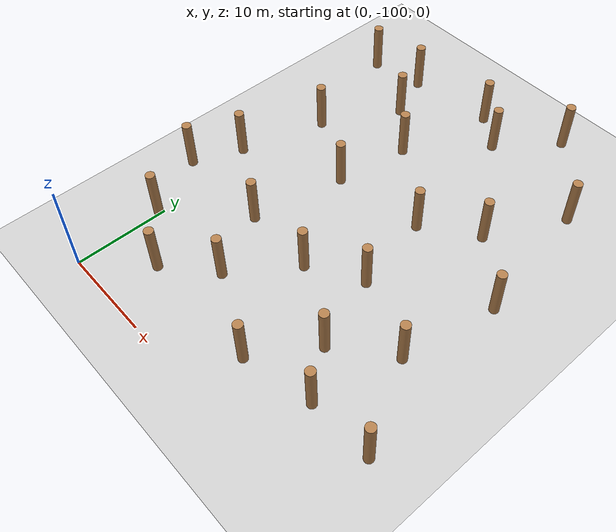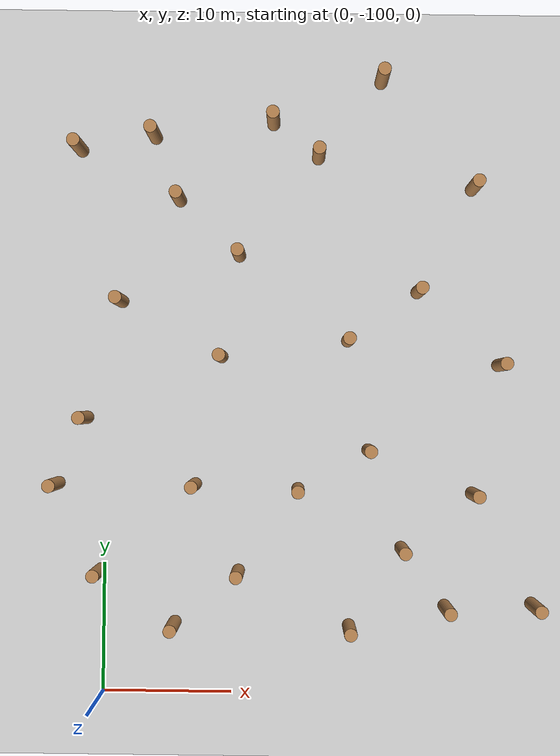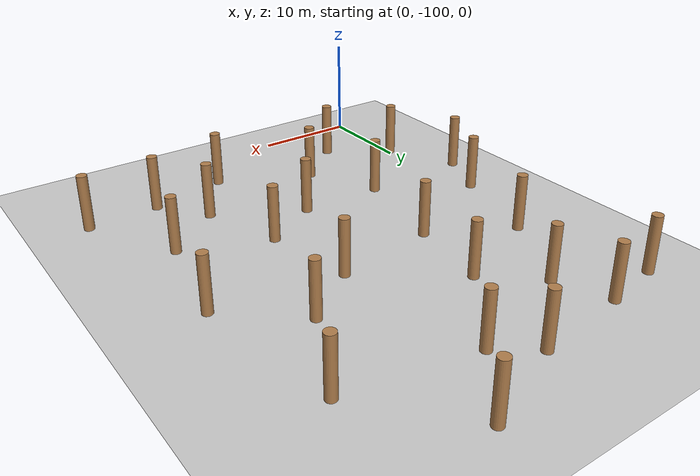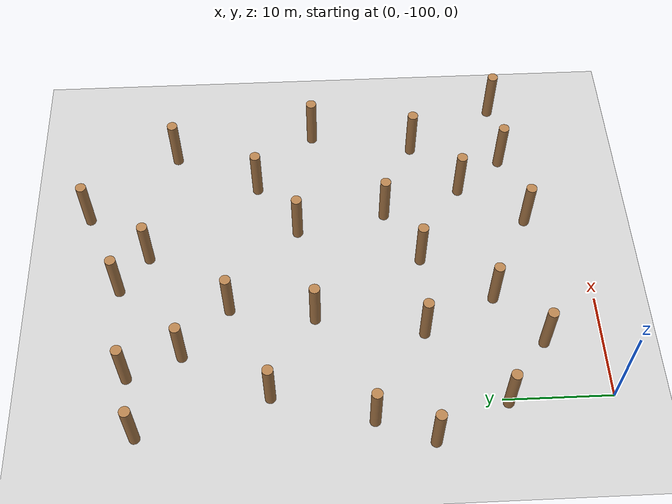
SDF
<sdf version="1.6">
 <world name="default">
  <model name="ground_plane">
   <static>1</static>
   <link name="link">
    <collision name="collision">
     <geometry><plane><normal>0 0 1</normal><size>100 100</size></plane></geometry>
     <surface><friction><ode><mu>100</mu><mu2>50</mu2></ode></friction></surface>
    </collision>
    <visual name="visual">
     <cast_shadows>0</cast_shadows>
     <geometry><plane><normal>0 0 1</normal><size>100 100</size></plane></geometry>
     <material>
      <script><uri>file://media/materials/scripts/gazebo.material</uri><name>Gazebo/Grey</name></script>
     </material>
    </visual>
   </link>
  </model>
  <model name="WoodPillars_8">
   <link name="link">
    <inertial>
     <mass>1</mass>
     <inertia><ixx>0.145833</ixx><ixy>0</ixy><ixz>0</ixz><iyy>0.145833</iyy><iyz>0</iyz><izz>0.125</izz></inertia>
    </inertial>
    <visual name="visual">
     <geometry><cylinder><radius>0.5</radius><length>5.50507</length></cylinder></geometry>
     <material>
      <script><name>Gazebo/Wood</name><uri>file://media/materials/scripts/gazebo.material</uri></script>
     </material>
    </visual>
    <collision name="collision">
     <geometry><cylinder><radius>0.5</radius><length>5.50507</length></cylinder></geometry>
     <surface>
      <friction>
       <ode><mu>1</mu><mu2>1</mu2><fdir1>0 0 0</fdir1><slip1>0</slip1><slip2>0</slip2></ode>
       <torsional>
        <coefficient>1</coefficient>
        <patch_radius>0</patch_radius>
        <surface_radius>0</surface_radius>
        <use_patch_radius>1</use_patch_radius>
        <ode><slip>0</slip></ode>
       </torsional>
      </friction>
      <bounce><restitution_coefficient>0</restitution_coefficient><threshold>1e+06</threshold></bounce>
      <contact>
       <collide_without_contact>0</collide_without_contact>
       <collide_without_contact_bitmask>1</collide_without_contact_bitmask>
       <collide_bitmask>1</collide_bitmask>
       <ode>
        <soft_cfm>0</soft_cfm>
        <soft_erp>0.2</soft_erp>
        <kp>1e+13</kp>
        <kd>1</kd>
        <max_vel>0.01</max_vel>
        <min_depth>0</min_depth>
       </ode>
       <bullet>
        <split_impulse>1</split_impulse>
        <split_impulse_penetration_threshold>-0.01</split_impulse_penetration_threshold>
        <soft_cfm>0</soft_cfm>
        <soft_erp>0.2</soft_erp>
        <kp>1e+13</kp>
        <kd>1</kd>
       </bullet>
      </contact>
     </surface>
    </collision>
   </link>
   <link name="link_clone">
    <inertial>
     <mass>1</mass>
     <inertia><ixx>0.145833</ixx><ixy>0</ixy><ixz>0</ixz><iyy>0.145833</iyy><iyz>0</iyz><izz>0.125</izz></inertia>
    </inertial>
    <pose>17.6954 -2.91348 -2e-06 0 -0 -0.001289</pose>
    <visual name="visual">
     <geometry><cylinder><radius>0.5</radius><length>5.50507</length></cylinder></geometry>
     <material>
      <script><name>Gazebo/Wood</name><uri>file://media/materials/scripts/gazebo.material</uri></script>
      <shader type="pixel"/>
     </material>
    </visual>
    <collision name="collision">
     <geometry><cylinder><radius>0.5</radius><length>5.50507</length></cylinder></geometry>
     <surface>
      <friction>
       <ode><mu>1</mu><mu2>1</mu2><fdir1>0 0 0</fdir1><slip1>0</slip1><slip2>0</slip2></ode>
       <torsional>
        <coefficient>1</coefficient>
        <patch_radius>0</patch_radius>
        <surface_radius>0</surface_radius>
        <use_patch_radius>1</use_patch_radius>
        <ode><slip>0</slip></ode>
       </torsional>
      </friction>
      <bounce><restitution_coefficient>0</restitution_coefficient><threshold>1e+06</threshold></bounce>
      <contact>
       <collide_without_contact>0</collide_without_contact>
       <collide_without_contact_bitmask>1</collide_without_contact_bitmask>
       <collide_bitmask>1</collide_bitmask>
       <ode>
        <soft_cfm>0</soft_cfm>
        <soft_erp>0.2</soft_erp>
        <kp>1e+13</kp>
        <kd>1</kd>
        <max_vel>0.01</max_vel>
        <min_depth>0</min_depth>
       </ode>
       <bullet>
        <split_impulse>1</split_impulse>
        <split_impulse_penetration_threshold>-0.01</split_impulse_penetration_threshold>
        <soft_cfm>0</soft_cfm>
        <soft_erp>0.2</soft_erp>
        <kp>1e+13</kp>
        <kd>1</kd>
       </bullet>
      </contact>
     </surface>
    </collision>
   </link>
   <link name="link_clone_10">
    <inertial>
     <mass>1</mass>
     <inertia><ixx>0.145833</ixx><ixy>0</ixy><ixz>0</ixz><iyy>0.145833</iyy><iyz>0</iyz><izz>0.125</izz></inertia>
    </inertial>
    <pose>2.50237 12.8939 0 0 -0 -0.001289</pose>
    <visual name="visual">
     <geometry><cylinder><radius>0.5</radius><length>5.50507</length></cylinder></geometry>
     <material>
      <script><name>Gazebo/Wood</name><uri>file://media/materials/scripts/gazebo.material</uri></script>
      <shader type="pixel"/>
     </material>
    </visual>
    <collision name="collision">
     <geometry><cylinder><radius>0.5</radius><length>5.50507</length></cylinder></geometry>
     <surface>
      <friction>
       <ode><mu>1</mu><mu2>1</mu2><fdir1>0 0 0</fdir1><slip1>0</slip1><slip2>0</slip2></ode>
       <torsional>
        <coefficient>1</coefficient>
        <patch_radius>0</patch_radius>
        <surface_radius>0</surface_radius>
        <use_patch_radius>1</use_patch_radius>
        <ode><slip>0</slip></ode>
       </torsional>
      </friction>
      <bounce><restitution_coefficient>0</restitution_coefficient><threshold>1e+06</threshold></bounce>
      <contact>
       <collide_without_contact>0</collide_without_contact>
       <collide_without_contact_bitmask>1</collide_without_contact_bitmask>
       <collide_bitmask>1</collide_bitmask>
       <ode>
        <soft_cfm>0</soft_cfm>
        <soft_erp>0.2</soft_erp>
        <kp>1e+13</kp>
        <kd>1</kd>
        <max_vel>0.01</max_vel>
        <min_depth>0</min_depth>
       </ode>
       <bullet>
        <split_impulse>1</split_impulse>
        <split_impulse_penetration_threshold>-0.01</split_impulse_penetration_threshold>
        <soft_cfm>0</soft_cfm>
        <soft_erp>0.2</soft_erp>
        <kp>1e+13</kp>
        <kd>1</kd>
       </bullet>
      </contact>
     </surface>
    </collision>
   </link>
   <link name="link_clone_11">
    <inertial>
     <mass>1</mass>
     <inertia><ixx>0.145833</ixx><ixy>0</ixy><ixz>0</ixz><iyy>0.145833</iyy><iyz>0</iyz><izz>0.125</izz></inertia>
    </inertial>
    <pose>20.1245 17.4079 -2e-06 0 -0 -0.001289</pose>
    <visual name="visual">
     <geometry><cylinder><radius>0.5</radius><length>5.50507</length></cylinder></geometry>
     <material>
      <script><name>Gazebo/Wood</name><uri>file://media/materials/scripts/gazebo.material</uri></script>
      <shader type="pixel"/>
     </material>
    </visual>
    <collision name="collision">
     <geometry><cylinder><radius>0.5</radius><length>5.50507</length></cylinder></geometry>
     <surface>
      <friction>
       <ode><mu>1</mu><mu2>1</mu2><fdir1>0 0 0</fdir1><slip1>0</slip1><slip2>0</slip2></ode>
       <torsional>
        <coefficient>1</coefficient>
        <patch_radius>0</patch_radius>
        <surface_radius>0</surface_radius>
        <use_patch_radius>1</use_patch_radius>
        <ode><slip>0</slip></ode>
       </torsional>
      </friction>
      <bounce><restitution_coefficient>0</restitution_coefficient><threshold>1e+06</threshold></bounce>
      <contact>
       <collide_without_contact>0</collide_without_contact>
       <collide_without_contact_bitmask>1</collide_without_contact_bitmask>
       <collide_bitmask>1</collide_bitmask>
       <ode>
        <soft_cfm>0</soft_cfm>
        <soft_erp>0.2</soft_erp>
        <kp>1e+13</kp>
        <kd>1</kd>
        <max_vel>0.01</max_vel>
        <min_depth>0</min_depth>
       </ode>
       <bullet>
        <split_impulse>1</split_impulse>
        <split_impulse_penetration_threshold>-0.01</split_impulse_penetration_threshold>
        <soft_cfm>0</soft_cfm>
        <soft_erp>0.2</soft_erp>
        <kp>1e+13</kp>
        <kd>1</kd>
       </bullet>
      </contact>
     </surface>
    </collision>
   </link>
   <link name="link_clone_13">
    <inertial>
     <mass>1</mass>
     <inertia><ixx>0.145833</ixx><ixy>0</ixy><ixz>0</ixz><iyy>0.145833</iyy><iyz>0</iyz><izz>0.125</izz></inertia>
    </inertial>
    <pose>32.2715 -23.3528 -3e-06 0 -0 -0.001289</pose>
    <visual name="visual">
     <geometry><cylinder><radius>0.5</radius><length>5.50507</length></cylinder></geometry>
     <material>
      <script><name>Gazebo/Wood</name><uri>file://media/materials/scripts/gazebo.material</uri></script>
      <shader type="pixel"/>
     </material>
    </visual>
    <collision name="collision">
     <geometry><cylinder><radius>0.5</radius><length>5.50507</length></cylinder></geometry>
     <surface>
      <friction>
       <ode><mu>1</mu><mu2>1</mu2><fdir1>0 0 0</fdir1><slip1>0</slip1><slip2>0</slip2></ode>
       <torsional>
        <coefficient>1</coefficient>
        <patch_radius>0</patch_radius>
        <surface_radius>0</surface_radius>
        <use_patch_radius>1</use_patch_radius>
        <ode><slip>0</slip></ode>
       </torsional>
      </friction>
      <bounce><restitution_coefficient>0</restitution_coefficient><threshold>1e+06</threshold></bounce>
      <contact>
       <collide_without_contact>0</collide_without_contact>
       <collide_without_contact_bitmask>1</collide_without_contact_bitmask>
       <collide_bitmask>1</collide_bitmask>
       <ode>
        <soft_cfm>0</soft_cfm>
        <soft_erp>0.2</soft_erp>
        <kp>1e+13</kp>
        <kd>1</kd>
        <max_vel>0.01</max_vel>
        <min_depth>0</min_depth>
       </ode>
       <bullet>
        <split_impulse>1</split_impulse>
        <split_impulse_penetration_threshold>-0.01</split_impulse_penetration_threshold>
        <soft_cfm>0</soft_cfm>
        <soft_erp>0.2</soft_erp>
        <kp>1e+13</kp>
        <kd>1</kd>
       </bullet>
      </contact>
     </surface>
    </collision>
   </link>
   <link name="link_clone_14">
    <inertial>
     <mass>1</mass>
     <inertia><ixx>0.145833</ixx><ixy>0</ixy><ixz>0</ixz><iyy>0.145833</iyy><iyz>0</iyz><izz>0.125</izz></inertia>
    </inertial>
    <pose>9.31461 -20.9997 -1e-06 0 -0 -0.001289</pose>
    <visual name="visual">
     <geometry><cylinder><radius>0.5</radius><length>5.50507</length></cylinder></geometry>
     <material>
      <script><name>Gazebo/Wood</name><uri>file://media/materials/scripts/gazebo.material</uri></script>
      <shader type="pixel"/>
     </material>
    </visual>
    <collision name="collision">
     <geometry><cylinder><radius>0.5</radius><length>5.50507</length></cylinder></geometry>
     <surface>
      <friction>
       <ode><mu>1</mu><mu2>1</mu2><fdir1>0 0 0</fdir1><slip1>0</slip1><slip2>0</slip2></ode>
       <torsional>
        <coefficient>1</coefficient>
        <patch_radius>0</patch_radius>
        <surface_radius>0</surface_radius>
        <use_patch_radius>1</use_patch_radius>
        <ode><slip>0</slip></ode>
       </torsional>
      </friction>
      <bounce><restitution_coefficient>0</restitution_coefficient><threshold>1e+06</threshold></bounce>
      <contact>
       <collide_without_contact>0</collide_without_contact>
       <collide_without_contact_bitmask>1</collide_without_contact_bitmask>
       <collide_bitmask>1</collide_bitmask>
       <ode>
        <soft_cfm>0</soft_cfm>
        <soft_erp>0.2</soft_erp>
        <kp>1e+13</kp>
        <kd>1</kd>
        <max_vel>0.01</max_vel>
        <min_depth>0</min_depth>
       </ode>
       <bullet>
        <split_impulse>1</split_impulse>
        <split_impulse_penetration_threshold>-0.01</split_impulse_penetration_threshold>
        <soft_cfm>0</soft_cfm>
        <soft_erp>0.2</soft_erp>
        <kp>1e+13</kp>
        <kd>1</kd>
       </bullet>
      </contact>
     </surface>
    </collision>
   </link>
   <link name="link_clone_15">
    <inertial>
     <mass>1</mass>
     <inertia><ixx>0.145833</ixx><ixy>0</ixy><ixz>0</ixz><iyy>0.145833</iyy><iyz>0</iyz><izz>0.125</izz></inertia>
    </inertial>
    <pose>17.9894 -25.1945 -2e-06 0 -0 -0.001289</pose>
    <visual name="visual">
     <geometry><cylinder><radius>0.5</radius><length>5.50507</length></cylinder></geometry>
     <material>
      <script><name>Gazebo/Wood</name><uri>file://media/materials/scripts/gazebo.material</uri></script>
      <shader type="pixel"/>
     </material>
    </visual>
    <collision name="collision">
     <geometry><cylinder><radius>0.5</radius><length>5.50507</length></cylinder></geometry>
     <surface>
      <friction>
       <ode><mu>1</mu><mu2>1</mu2><fdir1>0 0 0</fdir1><slip1>0</slip1><slip2>0</slip2></ode>
       <torsional>
        <coefficient>1</coefficient>
        <patch_radius>0</patch_radius>
        <surface_radius>0</surface_radius>
        <use_patch_radius>1</use_patch_radius>
        <ode><slip>0</slip></ode>
       </torsional>
      </friction>
      <bounce><restitution_coefficient>0</restitution_coefficient><threshold>1e+06</threshold></bounce>
      <contact>
       <collide_without_contact>0</collide_without_contact>
       <collide_without_contact_bitmask>1</collide_without_contact_bitmask>
       <collide_bitmask>1</collide_bitmask>
       <ode>
        <soft_cfm>0</soft_cfm>
        <soft_erp>0.2</soft_erp>
        <kp>1e+13</kp>
        <kd>1</kd>
        <max_vel>0.01</max_vel>
        <min_depth>0</min_depth>
       </ode>
       <bullet>
        <split_impulse>1</split_impulse>
        <split_impulse_penetration_threshold>-0.01</split_impulse_penetration_threshold>
        <soft_cfm>0</soft_cfm>
        <soft_erp>0.2</soft_erp>
        <kp>1e+13</kp>
        <kd>1</kd>
       </bullet>
      </contact>
     </surface>
    </collision>
   </link>
   <link name="link_clone_17">
    <inertial>
     <mass>1</mass>
     <inertia><ixx>0.145833</ixx><ixy>0</ixy><ixz>0</ixz><iyy>0.145833</iyy><iyz>0</iyz><izz>0.125</izz></inertia>
    </inertial>
    <pose>19.3784 -11.4604 -2e-06 0 -0 -0.001289</pose>
    <visual name="visual">
     <geometry><cylinder><radius>0.5</radius><length>5.50507</length></cylinder></geometry>
     <material>
      <script><name>Gazebo/Wood</name><uri>file://media/materials/scripts/gazebo.material</uri></script>
      <shader type="pixel"/>
     </material>
    </visual>
    <collision name="collision">
     <geometry><cylinder><radius>0.5</radius><length>5.50507</length></cylinder></geometry>
     <surface>
      <friction>
       <ode><mu>1</mu><mu2>1</mu2><fdir1>0 0 0</fdir1><slip1>0</slip1><slip2>0</slip2></ode>
       <torsional>
        <coefficient>1</coefficient>
        <patch_radius>0</patch_radius>
        <surface_radius>0</surface_radius>
        <use_patch_radius>1</use_patch_radius>
        <ode><slip>0</slip></ode>
       </torsional>
      </friction>
      <bounce><restitution_coefficient>0</restitution_coefficient><threshold>1e+06</threshold></bounce>
      <contact>
       <collide_without_contact>0</collide_without_contact>
       <collide_without_contact_bitmask>1</collide_without_contact_bitmask>
       <collide_bitmask>1</collide_bitmask>
       <ode>
        <soft_cfm>0</soft_cfm>
        <soft_erp>0.2</soft_erp>
        <kp>1e+13</kp>
        <kd>1</kd>
        <max_vel>0.01</max_vel>
        <min_depth>0</min_depth>
       </ode>
       <bullet>
        <split_impulse>1</split_impulse>
        <split_impulse_penetration_threshold>-0.01</split_impulse_penetration_threshold>
        <soft_cfm>0</soft_cfm>
        <soft_erp>0.2</soft_erp>
        <kp>1e+13</kp>
        <kd>1</kd>
       </bullet>
      </contact>
     </surface>
    </collision>
   </link>
   <link name="link_clone_18">
    <inertial>
     <mass>1</mass>
     <inertia><ixx>0.145833</ixx><ixy>0</ixy><ixz>0</ixz><iyy>0.145833</iyy><iyz>0</iyz><izz>0.125</izz></inertia>
    </inertial>
    <pose>9.1573 3.67739 -1e-06 0 -0 -0.001289</pose>
    <visual name="visual">
     <geometry><cylinder><radius>0.5</radius><length>5.50507</length></cylinder></geometry>
     <material>
      <script><name>Gazebo/Wood</name><uri>file://media/materials/scripts/gazebo.material</uri></script>
      <shader type="pixel"/>
     </material>
    </visual>
    <collision name="collision">
     <geometry><cylinder><radius>0.5</radius><length>5.50507</length></cylinder></geometry>
     <surface>
      <friction>
       <ode><mu>1</mu><mu2>1</mu2><fdir1>0 0 0</fdir1><slip1>0</slip1><slip2>0</slip2></ode>
       <torsional>
        <coefficient>1</coefficient>
        <patch_radius>0</patch_radius>
        <surface_radius>0</surface_radius>
        <use_patch_radius>1</use_patch_radius>
        <ode><slip>0</slip></ode>
       </torsional>
      </friction>
      <bounce><restitution_coefficient>0</restitution_coefficient><threshold>1e+06</threshold></bounce>
      <contact>
       <collide_without_contact>0</collide_without_contact>
       <collide_without_contact_bitmask>1</collide_without_contact_bitmask>
       <collide_bitmask>1</collide_bitmask>
       <ode>
        <soft_cfm>0</soft_cfm>
        <soft_erp>0.2</soft_erp>
        <kp>1e+13</kp>
        <kd>1</kd>
        <max_vel>0.01</max_vel>
        <min_depth>0</min_depth>
       </ode>
       <bullet>
        <split_impulse>1</split_impulse>
        <split_impulse_penetration_threshold>-0.01</split_impulse_penetration_threshold>
        <soft_cfm>0</soft_cfm>
        <soft_erp>0.2</soft_erp>
        <kp>1e+13</kp>
        <kd>1</kd>
       </bullet>
      </contact>
     </surface>
    </collision>
   </link>
   <link name="link_clone_19">
    <inertial>
     <mass>1</mass>
     <inertia><ixx>0.145833</ixx><ixy>0</ixy><ixz>0</ixz><iyy>0.145833</iyy><iyz>0</iyz><izz>0.125</izz></inertia>
    </inertial>
    <pose>-3.28611 11.8265 -0 0 -0 -0.001289</pose>
    <visual name="visual">
     <geometry><cylinder><radius>0.5</radius><length>5.50507</length></cylinder></geometry>
     <material>
      <script><name>Gazebo/Wood</name><uri>file://media/materials/scripts/gazebo.material</uri></script>
      <shader type="pixel"/>
     </material>
    </visual>
    <collision name="collision">
     <geometry><cylinder><radius>0.5</radius><length>5.50507</length></cylinder></geometry>
     <surface>
      <friction>
       <ode><mu>1</mu><mu2>1</mu2><fdir1>0 0 0</fdir1><slip1>0</slip1><slip2>0</slip2></ode>
       <torsional>
        <coefficient>1</coefficient>
        <patch_radius>0</patch_radius>
        <surface_radius>0</surface_radius>
        <use_patch_radius>1</use_patch_radius>
        <ode><slip>0</slip></ode>
       </torsional>
      </friction>
      <bounce><restitution_coefficient>0</restitution_coefficient><threshold>1e+06</threshold></bounce>
      <contact>
       <collide_without_contact>0</collide_without_contact>
       <collide_without_contact_bitmask>1</collide_without_contact_bitmask>
       <collide_bitmask>1</collide_bitmask>
       <ode>
        <soft_cfm>0</soft_cfm>
        <soft_erp>0.2</soft_erp>
        <kp>1e+13</kp>
        <kd>1</kd>
        <max_vel>0.01</max_vel>
        <min_depth>0</min_depth>
       </ode>
       <bullet>
        <split_impulse>1</split_impulse>
        <split_impulse_penetration_threshold>-0.01</split_impulse_penetration_threshold>
        <soft_cfm>0</soft_cfm>
        <soft_erp>0.2</soft_erp>
        <kp>1e+13</kp>
        <kd>1</kd>
       </bullet>
      </contact>
     </surface>
    </collision>
   </link>
   <link name="link_clone_20">
    <inertial>
     <mass>1</mass>
     <inertia><ixx>0.145833</ixx><ixy>0</ixy><ixz>0</ixz><iyy>0.145833</iyy><iyz>0</iyz><izz>0.125</izz></inertia>
    </inertial>
    <pose>-2.64423 -9.12396 -0 0 -0 -0.001289</pose>
    <visual name="visual">
     <geometry><cylinder><radius>0.5</radius><length>5.50507</length></cylinder></geometry>
     <material>
      <script><name>Gazebo/Wood</name><uri>file://media/materials/scripts/gazebo.material</uri></script>
      <shader type="pixel"/>
     </material>
    </visual>
    <collision name="collision">
     <geometry><cylinder><radius>0.5</radius><length>5.50507</length></cylinder></geometry>
     <surface>
      <friction>
       <ode><mu>1</mu><mu2>1</mu2><fdir1>0 0 0</fdir1><slip1>0</slip1><slip2>0</slip2></ode>
       <torsional>
        <coefficient>1</coefficient>
        <patch_radius>0</patch_radius>
        <surface_radius>0</surface_radius>
        <use_patch_radius>1</use_patch_radius>
        <ode><slip>0</slip></ode>
       </torsional>
      </friction>
      <bounce><restitution_coefficient>0</restitution_coefficient><threshold>1e+06</threshold></bounce>
      <contact>
       <collide_without_contact>0</collide_without_contact>
       <collide_without_contact_bitmask>1</collide_without_contact_bitmask>
       <collide_bitmask>1</collide_bitmask>
       <ode>
        <soft_cfm>0</soft_cfm>
        <soft_erp>0.2</soft_erp>
        <kp>1e+13</kp>
        <kd>1</kd>
        <max_vel>0.01</max_vel>
        <min_depth>0</min_depth>
       </ode>
       <bullet>
        <split_impulse>1</split_impulse>
        <split_impulse_penetration_threshold>-0.01</split_impulse_penetration_threshold>
        <soft_cfm>0</soft_cfm>
        <soft_erp>0.2</soft_erp>
        <kp>1e+13</kp>
        <kd>1</kd>
       </bullet>
      </contact>
     </surface>
    </collision>
   </link>
   <link name="link_clone_21">
    <inertial>
     <mass>1</mass>
     <inertia><ixx>0.145833</ixx><ixy>0</ixy><ixz>0</ixz><iyy>0.145833</iyy><iyz>0</iyz><izz>0.125</izz></inertia>
    </inertial>
    <pose>15.2748 11.406 -1e-06 0 -0 -0.001289</pose>
    <visual name="visual">
     <geometry><cylinder><radius>0.5</radius><length>5.50507</length></cylinder></geometry>
     <material>
      <script><name>Gazebo/Wood</name><uri>file://media/materials/scripts/gazebo.material</uri></script>
      <shader type="pixel"/>
     </material>
    </visual>
    <collision name="collision">
     <geometry><cylinder><radius>0.5</radius><length>5.50507</length></cylinder></geometry>
     <surface>
      <friction>
       <ode><mu>1</mu><mu2>1</mu2><fdir1>0 0 0</fdir1><slip1>0</slip1><slip2>0</slip2></ode>
       <torsional>
        <coefficient>1</coefficient>
        <patch_radius>0</patch_radius>
        <surface_radius>0</surface_radius>
        <use_patch_radius>1</use_patch_radius>
        <ode><slip>0</slip></ode>
       </torsional>
      </friction>
      <bounce><restitution_coefficient>0</restitution_coefficient><threshold>1e+06</threshold></bounce>
      <contact>
       <collide_without_contact>0</collide_without_contact>
       <collide_without_contact_bitmask>1</collide_without_contact_bitmask>
       <collide_bitmask>1</collide_bitmask>
       <ode>
        <soft_cfm>0</soft_cfm>
        <soft_erp>0.2</soft_erp>
        <kp>1e+13</kp>
        <kd>1</kd>
        <max_vel>0.01</max_vel>
        <min_depth>0</min_depth>
       </ode>
       <bullet>
        <split_impulse>1</split_impulse>
        <split_impulse_penetration_threshold>-0.01</split_impulse_penetration_threshold>
        <soft_cfm>0</soft_cfm>
        <soft_erp>0.2</soft_erp>
        <kp>1e+13</kp>
        <kd>1</kd>
       </bullet>
      </contact>
     </surface>
    </collision>
   </link>
   <link name="link_clone_22">
    <inertial>
     <mass>1</mass>
     <inertia><ixx>0.145833</ixx><ixy>0</ixy><ixz>0</ixz><iyy>0.145833</iyy><iyz>0</iyz><izz>0.125</izz></inertia>
    </inertial>
    <pose>27.313 9.05961 -2e-06 0 -0 -0.001289</pose>
    <visual name="visual">
     <geometry><cylinder><radius>0.5</radius><length>5.50507</length></cylinder></geometry>
     <material>
      <script><name>Gazebo/Wood</name><uri>file://media/materials/scripts/gazebo.material</uri></script>
      <shader type="pixel"/>
     </material>
    </visual>
    <collision name="collision">
     <geometry><cylinder><radius>0.5</radius><length>5.50507</length></cylinder></geometry>
     <surface>
      <friction>
       <ode><mu>1</mu><mu2>1</mu2><fdir1>0 0 0</fdir1><slip1>0</slip1><slip2>0</slip2></ode>
       <torsional>
        <coefficient>1</coefficient>
        <patch_radius>0</patch_radius>
        <surface_radius>0</surface_radius>
        <use_patch_radius>1</use_patch_radius>
        <ode><slip>0</slip></ode>
       </torsional>
      </friction>
      <bounce><restitution_coefficient>0</restitution_coefficient><threshold>1e+06</threshold></bounce>
      <contact>
       <collide_without_contact>0</collide_without_contact>
       <collide_without_contact_bitmask>1</collide_without_contact_bitmask>
       <collide_bitmask>1</collide_bitmask>
       <ode>
        <soft_cfm>0</soft_cfm>
        <soft_erp>0.2</soft_erp>
        <kp>1e+13</kp>
        <kd>1</kd>
        <max_vel>0.01</max_vel>
        <min_depth>0</min_depth>
       </ode>
       <bullet>
        <split_impulse>1</split_impulse>
        <split_impulse_penetration_threshold>-0.01</split_impulse_penetration_threshold>
        <soft_cfm>0</soft_cfm>
        <soft_erp>0.2</soft_erp>
        <kp>1e+13</kp>
        <kd>1</kd>
       </bullet>
      </contact>
     </surface>
    </collision>
   </link>
   <link name="link_clone_23">
    <inertial>
     <mass>1</mass>
     <inertia><ixx>0.145833</ixx><ixy>0</ixy><ixz>0</ixz><iyy>0.145833</iyy><iyz>0</iyz><izz>0.125</izz></inertia>
    </inertial>
    <pose>29.5176 -4.71623 -3e-06 0 -0 -0.001289</pose>
    <visual name="visual">
     <geometry><cylinder><radius>0.5</radius><length>5.50507</length></cylinder></geometry>
     <material>
      <script><name>Gazebo/Wood</name><uri>file://media/materials/scripts/gazebo.material</uri></script>
      <shader type="pixel"/>
     </material>
    </visual>
    <collision name="collision">
     <geometry><cylinder><radius>0.5</radius><length>5.50507</length></cylinder></geometry>
     <surface>
      <friction>
       <ode><mu>1</mu><mu2>1</mu2><fdir1>0 0 0</fdir1><slip1>0</slip1><slip2>0</slip2></ode>
       <torsional>
        <coefficient>1</coefficient>
        <patch_radius>0</patch_radius>
        <surface_radius>0</surface_radius>
        <use_patch_radius>1</use_patch_radius>
        <ode><slip>0</slip></ode>
       </torsional>
      </friction>
      <bounce><restitution_coefficient>0</restitution_coefficient><threshold>1e+06</threshold></bounce>
      <contact>
       <collide_without_contact>0</collide_without_contact>
       <collide_without_contact_bitmask>1</collide_without_contact_bitmask>
       <collide_bitmask>1</collide_bitmask>
       <ode>
        <soft_cfm>0</soft_cfm>
        <soft_erp>0.2</soft_erp>
        <kp>1e+13</kp>
        <kd>1</kd>
        <max_vel>0.01</max_vel>
        <min_depth>0</min_depth>
       </ode>
       <bullet>
        <split_impulse>1</split_impulse>
        <split_impulse_penetration_threshold>-0.01</split_impulse_penetration_threshold>
        <soft_cfm>0</soft_cfm>
        <soft_erp>0.2</soft_erp>
        <kp>1e+13</kp>
        <kd>1</kd>
       </bullet>
      </contact>
     </surface>
    </collision>
   </link>
   <link name="link_clone_24">
    <inertial>
     <mass>1</mass>
     <inertia><ixx>0.145833</ixx><ixy>0</ixy><ixz>0</ixz><iyy>0.145833</iyy><iyz>0</iyz><izz>0.125</izz></inertia>
    </inertial>
    <pose>7.84688 -4.26113 -1e-06 0 -0 -0.001289</pose>
    <visual name="visual">
     <geometry><cylinder><radius>0.5</radius><length>5.50507</length></cylinder></geometry>
     <material>
      <script><name>Gazebo/Wood</name><uri>file://media/materials/scripts/gazebo.material</uri></script>
      <shader type="pixel"/>
     </material>
    </visual>
    <collision name="collision">
     <geometry><cylinder><radius>0.5</radius><length>5.50507</length></cylinder></geometry>
     <surface>
      <friction>
       <ode><mu>1</mu><mu2>1</mu2><fdir1>0 0 0</fdir1><slip1>0</slip1><slip2>0</slip2></ode>
       <torsional>
        <coefficient>1</coefficient>
        <patch_radius>0</patch_radius>
        <surface_radius>0</surface_radius>
        <use_patch_radius>1</use_patch_radius>
        <ode><slip>0</slip></ode>
       </torsional>
      </friction>
      <bounce><restitution_coefficient>0</restitution_coefficient><threshold>1e+06</threshold></bounce>
      <contact>
       <collide_without_contact>0</collide_without_contact>
       <collide_without_contact_bitmask>1</collide_without_contact_bitmask>
       <collide_bitmask>1</collide_bitmask>
       <ode>
        <soft_cfm>0</soft_cfm>
        <soft_erp>0.2</soft_erp>
        <kp>1e+13</kp>
        <kd>1</kd>
        <max_vel>0.01</max_vel>
        <min_depth>0</min_depth>
       </ode>
       <bullet>
        <split_impulse>1</split_impulse>
        <split_impulse_penetration_threshold>-0.01</split_impulse_penetration_threshold>
        <soft_cfm>0</soft_cfm>
        <soft_erp>0.2</soft_erp>
        <kp>1e+13</kp>
        <kd>1</kd>
       </bullet>
      </contact>
     </surface>
    </collision>
   </link>
   <link name="link_clone_25">
    <inertial>
     <mass>1</mass>
     <inertia><ixx>0.145833</ixx><ixy>0</ixy><ixz>0</ixz><iyy>0.145833</iyy><iyz>0</iyz><izz>0.125</izz></inertia>
    </inertial>
    <pose>11.7271 14.0632 -1e-06 0 -0 -0.001289</pose>
    <visual name="visual">
     <geometry><cylinder><radius>0.5</radius><length>5.50507</length></cylinder></geometry>
     <material>
      <script><name>Gazebo/Wood</name><uri>file://media/materials/scripts/gazebo.material</uri></script>
      <shader type="pixel"/>
     </material>
    </visual>
    <collision name="collision">
     <geometry><cylinder><radius>0.5</radius><length>5.50507</length></cylinder></geometry>
     <surface>
      <friction>
       <ode><mu>1</mu><mu2>1</mu2><fdir1>0 0 0</fdir1><slip1>0</slip1><slip2>0</slip2></ode>
       <torsional>
        <coefficient>1</coefficient>
        <patch_radius>0</patch_radius>
        <surface_radius>0</surface_radius>
        <use_patch_radius>1</use_patch_radius>
        <ode><slip>0</slip></ode>
       </torsional>
      </friction>
      <bounce><restitution_coefficient>0</restitution_coefficient><threshold>1e+06</threshold></bounce>
      <contact>
       <collide_without_contact>0</collide_without_contact>
       <collide_without_contact_bitmask>1</collide_without_contact_bitmask>
       <collide_bitmask>1</collide_bitmask>
       <ode>
        <soft_cfm>0</soft_cfm>
        <soft_erp>0.2</soft_erp>
        <kp>1e+13</kp>
        <kd>1</kd>
        <max_vel>0.01</max_vel>
        <min_depth>0</min_depth>
       </ode>
       <bullet>
        <split_impulse>1</split_impulse>
        <split_impulse_penetration_threshold>-0.01</split_impulse_penetration_threshold>
        <soft_cfm>0</soft_cfm>
        <soft_erp>0.2</soft_erp>
        <kp>1e+13</kp>
        <kd>1</kd>
       </bullet>
      </contact>
     </surface>
    </collision>
   </link>
   <link name="link_clone_26">
    <inertial>
     <mass>1</mass>
     <inertia><ixx>0.145833</ixx><ixy>0</ixy><ixz>0</ixz><iyy>0.145833</iyy><iyz>0</iyz><izz>0.125</izz></inertia>
    </inertial>
    <pose>13.9187 -14.5508 -1e-06 0 -0 -0.001289</pose>
    <visual name="visual">
     <geometry><cylinder><radius>0.5</radius><length>5.50507</length></cylinder></geometry>
     <material>
      <script><name>Gazebo/Wood</name><uri>file://media/materials/scripts/gazebo.material</uri></script>
      <shader type="pixel"/>
     </material>
    </visual>
    <collision name="collision">
     <geometry><cylinder><radius>0.5</radius><length>5.50507</length></cylinder></geometry>
     <surface>
      <friction>
       <ode><mu>1</mu><mu2>1</mu2><fdir1>0 0 0</fdir1><slip1>0</slip1><slip2>0</slip2></ode>
       <torsional>
        <coefficient>1</coefficient>
        <patch_radius>0</patch_radius>
        <surface_radius>0</surface_radius>
        <use_patch_radius>1</use_patch_radius>
        <ode><slip>0</slip></ode>
       </torsional>
      </friction>
      <bounce><restitution_coefficient>0</restitution_coefficient><threshold>1e+06</threshold></bounce>
      <contact>
       <collide_without_contact>0</collide_without_contact>
       <collide_without_contact_bitmask>1</collide_without_contact_bitmask>
       <collide_bitmask>1</collide_bitmask>
       <ode>
        <soft_cfm>0</soft_cfm>
        <soft_erp>0.2</soft_erp>
        <kp>1e+13</kp>
        <kd>1</kd>
        <max_vel>0.01</max_vel>
        <min_depth>0</min_depth>
       </ode>
       <bullet>
        <split_impulse>1</split_impulse>
        <split_impulse_penetration_threshold>-0.01</split_impulse_penetration_threshold>
        <soft_cfm>0</soft_cfm>
        <soft_erp>0.2</soft_erp>
        <kp>1e+13</kp>
        <kd>1</kd>
       </bullet>
      </contact>
     </surface>
    </collision>
   </link>
   <link name="link_clone_27">
    <inertial>
     <mass>1</mass>
     <inertia><ixx>0.145833</ixx><ixy>0</ixy><ixz>0</ixz><iyy>0.145833</iyy><iyz>0</iyz><izz>0.125</izz></inertia>
    </inertial>
    <pose>4.38632 -25.0605 -1e-06 0 -0 -0.001289</pose>
    <visual name="visual">
     <geometry><cylinder><radius>0.5</radius><length>5.50507</length></cylinder></geometry>
     <material>
      <script><name>Gazebo/Wood</name><uri>file://media/materials/scripts/gazebo.material</uri></script>
      <shader type="pixel"/>
     </material>
    </visual>
    <collision name="collision">
     <geometry><cylinder><radius>0.5</radius><length>5.50507</length></cylinder></geometry>
     <surface>
      <friction>
       <ode><mu>1</mu><mu2>1</mu2><fdir1>0 0 0</fdir1><slip1>0</slip1><slip2>0</slip2></ode>
       <torsional>
        <coefficient>1</coefficient>
        <patch_radius>0</patch_radius>
        <surface_radius>0</surface_radius>
        <use_patch_radius>1</use_patch_radius>
        <ode><slip>0</slip></ode>
       </torsional>
      </friction>
      <bounce><restitution_coefficient>0</restitution_coefficient><threshold>1e+06</threshold></bounce>
      <contact>
       <collide_without_contact>0</collide_without_contact>
       <collide_without_contact_bitmask>1</collide_without_contact_bitmask>
       <collide_bitmask>1</collide_bitmask>
       <ode>
        <soft_cfm>0</soft_cfm>
        <soft_erp>0.2</soft_erp>
        <kp>1e+13</kp>
        <kd>1</kd>
        <max_vel>0.01</max_vel>
        <min_depth>0</min_depth>
       </ode>
       <bullet>
        <split_impulse>1</split_impulse>
        <split_impulse_penetration_threshold>-0.01</split_impulse_penetration_threshold>
        <soft_cfm>0</soft_cfm>
        <soft_erp>0.2</soft_erp>
        <kp>1e+13</kp>
        <kd>1</kd>
       </bullet>
      </contact>
     </surface>
    </collision>
   </link>
   <link name="link_clone_28">
    <inertial>
     <mass>1</mass>
     <inertia><ixx>0.145833</ixx><ixy>0</ixy><ixz>0</ixz><iyy>0.145833</iyy><iyz>0</iyz><izz>0.125</izz></inertia>
    </inertial>
    <pose>27.5353 -14.766 -3e-06 0 -0 -0.001289</pose>
    <visual name="visual">
     <geometry><cylinder><radius>0.5</radius><length>5.50507</length></cylinder></geometry>
     <material>
      <script><name>Gazebo/Wood</name><uri>file://media/materials/scripts/gazebo.material</uri></script>
      <shader type="pixel"/>
     </material>
    </visual>
    <collision name="collision">
     <geometry><cylinder><radius>0.5</radius><length>5.50507</length></cylinder></geometry>
     <surface>
      <friction>
       <ode><mu>1</mu><mu2>1</mu2><fdir1>0 0 0</fdir1><slip1>0</slip1><slip2>0</slip2></ode>
       <torsional>
        <coefficient>1</coefficient>
        <patch_radius>0</patch_radius>
        <surface_radius>0</surface_radius>
        <use_patch_radius>1</use_patch_radius>
        <ode><slip>0</slip></ode>
       </torsional>
      </friction>
      <bounce><restitution_coefficient>0</restitution_coefficient><threshold>1e+06</threshold></bounce>
      <contact>
       <collide_without_contact>0</collide_without_contact>
       <collide_without_contact_bitmask>1</collide_without_contact_bitmask>
       <collide_bitmask>1</collide_bitmask>
       <ode>
        <soft_cfm>0</soft_cfm>
        <soft_erp>0.2</soft_erp>
        <kp>1e+13</kp>
        <kd>1</kd>
        <max_vel>0.01</max_vel>
        <min_depth>0</min_depth>
       </ode>
       <bullet>
        <split_impulse>1</split_impulse>
        <split_impulse_penetration_threshold>-0.01</split_impulse_penetration_threshold>
        <soft_cfm>0</soft_cfm>
        <soft_erp>0.2</soft_erp>
        <kp>1e+13</kp>
        <kd>1</kd>
       </bullet>
      </contact>
     </surface>
    </collision>
   </link>
   <link name="link_clone_30">
    <inertial>
     <mass>1</mass>
     <inertia><ixx>0.145833</ixx><ixy>0</ixy><ixz>0</ixz><iyy>0.145833</iyy><iyz>0</iyz><izz>0.125</izz></inertia>
    </inertial>
    <pose>4.46339 7.97492 0 0 -0 -0.001289</pose>
    <visual name="visual">
     <geometry><cylinder><radius>0.5</radius><length>5.50507</length></cylinder></geometry>
     <material>
      <script><name>Gazebo/Wood</name><uri>file://media/materials/scripts/gazebo.material</uri></script>
      <shader type="pixel"/>
     </material>
    </visual>
    <collision name="collision">
     <geometry><cylinder><radius>0.5</radius><length>5.50507</length></cylinder></geometry>
     <surface>
      <friction>
       <ode><mu>1</mu><mu2>1</mu2><fdir1>0 0 0</fdir1><slip1>0</slip1><slip2>0</slip2></ode>
       <torsional>
        <coefficient>1</coefficient>
        <patch_radius>0</patch_radius>
        <surface_radius>0</surface_radius>
        <use_patch_radius>1</use_patch_radius>
        <ode><slip>0</slip></ode>
       </torsional>
      </friction>
      <bounce><restitution_coefficient>0</restitution_coefficient><threshold>1e+06</threshold></bounce>
      <contact>
       <collide_without_contact>0</collide_without_contact>
       <collide_without_contact_bitmask>1</collide_without_contact_bitmask>
       <collide_bitmask>1</collide_bitmask>
       <ode>
        <soft_cfm>0</soft_cfm>
        <soft_erp>0.2</soft_erp>
        <kp>1e+13</kp>
        <kd>1</kd>
        <max_vel>0.01</max_vel>
        <min_depth>0</min_depth>
       </ode>
       <bullet>
        <split_impulse>1</split_impulse>
        <split_impulse_penetration_threshold>-0.01</split_impulse_penetration_threshold>
        <soft_cfm>0</soft_cfm>
        <soft_erp>0.2</soft_erp>
        <kp>1e+13</kp>
        <kd>1</kd>
       </bullet>
      </contact>
     </surface>
    </collision>
   </link>
   <link name="link_clone_32">
    <inertial>
     <mass>1</mass>
     <inertia><ixx>0.145833</ixx><ixy>0</ixy><ixz>0</ixz><iyy>0.145833</iyy><iyz>0</iyz><izz>0.125</izz></inertia>
    </inertial>
    <pose>-4.82669 -14.2698 -0 0 -0 -0.001289</pose>
    <visual name="visual">
     <geometry><cylinder><radius>0.5</radius><length>5.50507</length></cylinder></geometry>
     <material>
      <script><name>Gazebo/Wood</name><uri>file://media/materials/scripts/gazebo.material</uri></script>
      <shader type="pixel"/>
     </material>
    </visual>
    <collision name="collision">
     <geometry><cylinder><radius>0.5</radius><length>5.50507</length></cylinder></geometry>
     <surface>
      <friction>
       <ode><mu>1</mu><mu2>1</mu2><fdir1>0 0 0</fdir1><slip1>0</slip1><slip2>0</slip2></ode>
       <torsional>
        <coefficient>1</coefficient>
        <patch_radius>0</patch_radius>
        <surface_radius>0</surface_radius>
        <use_patch_radius>1</use_patch_radius>
        <ode><slip>0</slip></ode>
       </torsional>
      </friction>
      <bounce><restitution_coefficient>0</restitution_coefficient><threshold>1e+06</threshold></bounce>
      <contact>
       <collide_without_contact>0</collide_without_contact>
       <collide_without_contact_bitmask>1</collide_without_contact_bitmask>
       <collide_bitmask>1</collide_bitmask>
       <ode>
        <soft_cfm>0</soft_cfm>
        <soft_erp>0.2</soft_erp>
        <kp>1e+13</kp>
        <kd>1</kd>
        <max_vel>0.01</max_vel>
        <min_depth>0</min_depth>
       </ode>
       <bullet>
        <split_impulse>1</split_impulse>
        <split_impulse_penetration_threshold>-0.01</split_impulse_penetration_threshold>
        <soft_cfm>0</soft_cfm>
        <soft_erp>0.2</soft_erp>
        <kp>1e+13</kp>
        <kd>1</kd>
       </bullet>
      </contact>
     </surface>
    </collision>
   </link>
   <link name="link_clone_34">
    <inertial>
     <mass>1</mass>
     <inertia><ixx>0.145833</ixx><ixy>0</ixy><ixz>0</ixz><iyy>0.145833</iyy><iyz>0</iyz><izz>0.125</izz></inertia>
    </inertial>
    <pose>25.4673 -23.5908 -3e-06 0 -0 -0.001289</pose>
    <visual name="visual">
     <geometry><cylinder><radius>0.5</radius><length>5.50507</length></cylinder></geometry>
     <material>
      <script><name>Gazebo/Wood</name><uri>file://media/materials/scripts/gazebo.material</uri></script>
      <shader type="pixel"/>
     </material>
    </visual>
    <collision name="collision">
     <geometry><cylinder><radius>0.5</radius><length>5.50507</length></cylinder></geometry>
     <surface>
      <friction>
       <ode><mu>1</mu><mu2>1</mu2><fdir1>0 0 0</fdir1><slip1>0</slip1><slip2>0</slip2></ode>
       <torsional>
        <coefficient>1</coefficient>
        <patch_radius>0</patch_radius>
        <surface_radius>0</surface_radius>
        <use_patch_radius>1</use_patch_radius>
        <ode><slip>0</slip></ode>
       </torsional>
      </friction>
      <bounce><restitution_coefficient>0</restitution_coefficient><threshold>1e+06</threshold></bounce>
      <contact>
       <collide_without_contact>0</collide_without_contact>
       <collide_without_contact_bitmask>1</collide_without_contact_bitmask>
       <collide_bitmask>1</collide_bitmask>
       <ode>
        <soft_cfm>0</soft_cfm>
        <soft_erp>0.2</soft_erp>
        <kp>1e+13</kp>
        <kd>1</kd>
        <max_vel>0.01</max_vel>
        <min_depth>0</min_depth>
       </ode>
       <bullet>
        <split_impulse>1</split_impulse>
        <split_impulse_penetration_threshold>-0.01</split_impulse_penetration_threshold>
        <soft_cfm>0</soft_cfm>
        <soft_erp>0.2</soft_erp>
        <kp>1e+13</kp>
        <kd>1</kd>
       </bullet>
      </contact>
     </surface>
    </collision>
   </link>
   <link name="link_clone_4">
    <inertial>
     <mass>1</mass>
     <inertia><ixx>0.145833</ixx><ixy>0</ixy><ixz>0</ixz><iyy>0.145833</iyy><iyz>0</iyz><izz>0.125</izz></inertia>
    </inertial>
    <pose>23.1128 0.93751 -2e-06 0 -0 -0.001289</pose>
    <visual name="visual">
     <geometry><cylinder><radius>0.5</radius><length>5.50507</length></cylinder></geometry>
     <material>
      <script><name>Gazebo/Wood</name><uri>file://media/materials/scripts/gazebo.material</uri></script>
      <shader type="pixel"/>
     </material>
    </visual>
    <collision name="collision">
     <geometry><cylinder><radius>0.5</radius><length>5.50507</length></cylinder></geometry>
     <surface>
      <friction>
       <ode><mu>1</mu><mu2>1</mu2><fdir1>0 0 0</fdir1><slip1>0</slip1><slip2>0</slip2></ode>
       <torsional>
        <coefficient>1</coefficient>
        <patch_radius>0</patch_radius>
        <surface_radius>0</surface_radius>
        <use_patch_radius>1</use_patch_radius>
        <ode><slip>0</slip></ode>
       </torsional>
      </friction>
      <bounce><restitution_coefficient>0</restitution_coefficient><threshold>1e+06</threshold></bounce>
      <contact>
       <collide_without_contact>0</collide_without_contact>
       <collide_without_contact_bitmask>1</collide_without_contact_bitmask>
       <collide_bitmask>1</collide_bitmask>
       <ode>
        <soft_cfm>0</soft_cfm>
        <soft_erp>0.2</soft_erp>
        <kp>1e+13</kp>
        <kd>1</kd>
        <max_vel>0.01</max_vel>
        <min_depth>0</min_depth>
       </ode>
       <bullet>
        <split_impulse>1</split_impulse>
        <split_impulse_penetration_threshold>-0.01</split_impulse_penetration_threshold>
        <soft_cfm>0</soft_cfm>
        <soft_erp>0.2</soft_erp>
        <kp>1e+13</kp>
        <kd>1</kd>
       </bullet>
      </contact>
     </surface>
    </collision>
   </link>
   <link name="link_clone_7">
    <inertial>
     <mass>1</mass>
     <inertia><ixx>0.145833</ixx><ixy>0</ixy><ixz>0</ixz><iyy>0.145833</iyy><iyz>0</iyz><izz>0.125</izz></inertia>
    </inertial>
    <pose>22.0331 -19.0814 -2e-06 0 -0 -0.001289</pose>
    <visual name="visual">
     <geometry><cylinder><radius>0.5</radius><length>5.50507</length></cylinder></geometry>
     <material>
      <script><name>Gazebo/Wood</name><uri>file://media/materials/scripts/gazebo.material</uri></script>
      <shader type="pixel"/>
     </material>
    </visual>
    <collision name="collision">
     <geometry><cylinder><radius>0.5</radius><length>5.50507</length></cylinder></geometry>
     <surface>
      <friction>
       <ode><mu>1</mu><mu2>1</mu2><fdir1>0 0 0</fdir1><slip1>0</slip1><slip2>0</slip2></ode>
       <torsional>
        <coefficient>1</coefficient>
        <patch_radius>0</patch_radius>
        <surface_radius>0</surface_radius>
        <use_patch_radius>1</use_patch_radius>
        <ode><slip>0</slip></ode>
       </torsional>
      </friction>
      <bounce><restitution_coefficient>0</restitution_coefficient><threshold>1e+06</threshold></bounce>
      <contact>
       <collide_without_contact>0</collide_without_contact>
       <collide_without_contact_bitmask>1</collide_without_contact_bitmask>
       <collide_bitmask>1</collide_bitmask>
       <ode>
        <soft_cfm>0</soft_cfm>
        <soft_erp>0.2</soft_erp>
        <kp>1e+13</kp>
        <kd>1</kd>
        <max_vel>0.01</max_vel>
        <min_depth>0</min_depth>
       </ode>
       <bullet>
        <split_impulse>1</split_impulse>
        <split_impulse_penetration_threshold>-0.01</split_impulse_penetration_threshold>
        <soft_cfm>0</soft_cfm>
        <soft_erp>0.2</soft_erp>
        <kp>1e+13</kp>
        <kd>1</kd>
       </bullet>
      </contact>
     </surface>
    </collision>
   </link>
   <link name="link_clone_8">
    <inertial>
     <mass>1</mass>
     <inertia><ixx>0.145833</ixx><ixy>0</ixy><ixz>0</ixz><iyy>0.145833</iyy><iyz>0</iyz><izz>0.125</izz></inertia>
    </inertial>
    <pose>5.87636 -14.2578 -1e-06 0 -0 -0.001289</pose>
    <visual name="visual">
     <geometry><cylinder><radius>0.5</radius><length>5.50507</length></cylinder></geometry>
     <material>
      <script><name>Gazebo/Wood</name><uri>file://media/materials/scripts/gazebo.material</uri></script>
      <shader type="pixel"/>
     </material>
    </visual>
    <collision name="collision">
     <geometry><cylinder><radius>0.5</radius><length>5.50507</length></cylinder></geometry>
     <surface>
      <friction>
       <ode><mu>1</mu><mu2>1</mu2><fdir1>0 0 0</fdir1><slip1>0</slip1><slip2>0</slip2></ode>
       <torsional>
        <coefficient>1</coefficient>
        <patch_radius>0</patch_radius>
        <surface_radius>0</surface_radius>
        <use_patch_radius>1</use_patch_radius>
        <ode><slip>0</slip></ode>
       </torsional>
      </friction>
      <bounce><restitution_coefficient>0</restitution_coefficient><threshold>1e+06</threshold></bounce>
      <contact>
       <collide_without_contact>0</collide_without_contact>
       <collide_without_contact_bitmask>1</collide_without_contact_bitmask>
       <collide_bitmask>1</collide_bitmask>
       <ode>
        <soft_cfm>0</soft_cfm>
        <soft_erp>0.2</soft_erp>
        <kp>1e+13</kp>
        <kd>1</kd>
        <max_vel>0.01</max_vel>
        <min_depth>0</min_depth>
       </ode>
       <bullet>
        <split_impulse>1</split_impulse>
        <split_impulse_penetration_threshold>-0.01</split_impulse_penetration_threshold>
        <soft_cfm>0</soft_cfm>
        <soft_erp>0.2</soft_erp>
        <kp>1e+13</kp>
        <kd>1</kd>
       </bullet>
      </contact>
     </surface>
    </collision>
   </link>
   <link name="link_clone_9">
    <inertial>
     <mass>1</mass>
     <inertia><ixx>0.145833</ixx><ixy>0</ixy><ixz>0</ixz><iyy>0.145833</iyy><iyz>0</iyz><izz>0.125</izz></inertia>
    </inertial>
    <pose>-1.43964 -21.0028 0 0 -0 -0.001289</pose>
    <visual name="visual">
     <geometry><cylinder><radius>0.5</radius><length>5.50507</length></cylinder></geometry>
     <material>
      <script><name>Gazebo/Wood</name><uri>file://media/materials/scripts/gazebo.material</uri></script>
      <shader type="pixel"/>
     </material>
    </visual>
    <collision name="collision">
     <geometry><cylinder><radius>0.5</radius><length>5.50507</length></cylinder></geometry>
     <surface>
      <friction>
       <ode><mu>1</mu><mu2>1</mu2><fdir1>0 0 0</fdir1><slip1>0</slip1><slip2>0</slip2></ode>
       <torsional>
        <coefficient>1</coefficient>
        <patch_radius>0</patch_radius>
        <surface_radius>0</surface_radius>
        <use_patch_radius>1</use_patch_radius>
        <ode><slip>0</slip></ode>
       </torsional>
      </friction>
      <bounce><restitution_coefficient>0</restitution_coefficient><threshold>1e+06</threshold></bounce>
      <contact>
       <collide_without_contact>0</collide_without_contact>
       <collide_without_contact_bitmask>1</collide_without_contact_bitmask>
       <collide_bitmask>1</collide_bitmask>
       <ode>
        <soft_cfm>0</soft_cfm>
        <soft_erp>0.2</soft_erp>
        <kp>1e+13</kp>
        <kd>1</kd>
        <max_vel>0.01</max_vel>
        <min_depth>0</min_depth>
       </ode>
       <bullet>
        <split_impulse>1</split_impulse>
        <split_impulse_penetration_threshold>-0.01</split_impulse_penetration_threshold>
        <soft_cfm>0</soft_cfm>
        <soft_erp>0.2</soft_erp>
        <kp>1e+13</kp>
        <kd>1</kd>
       </bullet>
      </contact>
     </surface>
    </collision>
   </link>
   <static>0</static>
   <pose>1.10151 -69.5089 2.75253 0 -0 0.001606</pose>
  </model>
 </world>
</sdf>
